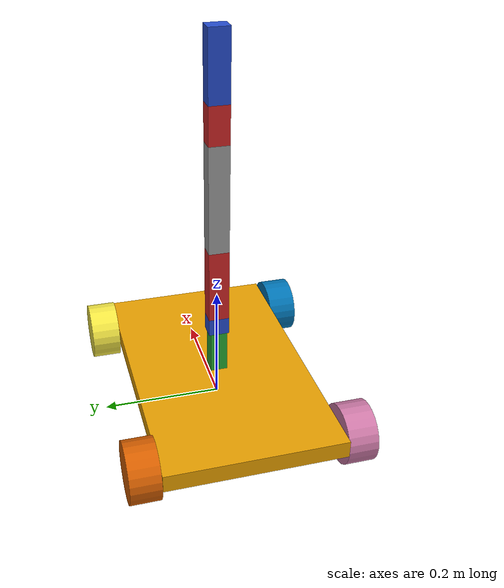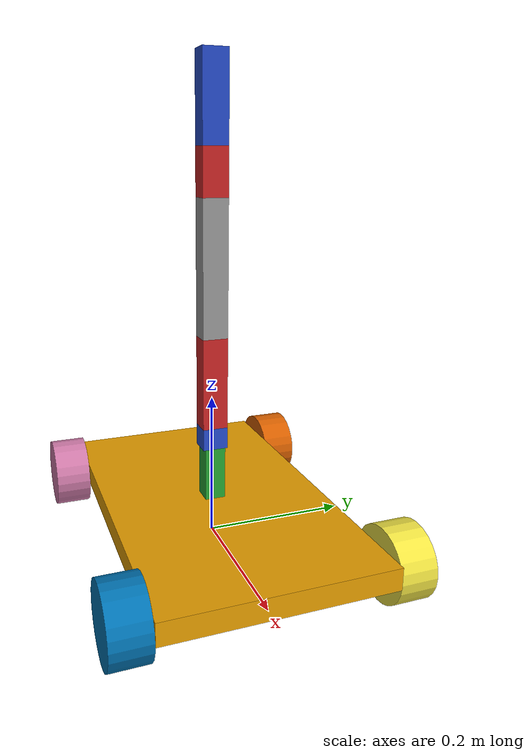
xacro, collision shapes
<?xml version="1.0"?>
<robot xmlns:xacro="http://ros.org/wiki/xacro" name="greenguardian">
  <!-- paramters to be set from the launch file -->
  <xacro:arg name="prefix" default="" />
  <xacro:arg name="use_robot_base" default="true" />
  <xacro:arg name="sim_gazebo_classic" default="false" />
  <xacro:arg name="simulation_controllers" default="" />

  <!--Manipulator Args -->
  <xacro:arg name="lower_limit" default="0.0"/>
  <xacro:arg name="upper_limit" default="${str(pi)}"/>

  <!-- Robot Base -->
  <xacro:if value="$(arg use_robot_base)">
    <xacro:include filename="$(find guardian_description)/urdf/core/robot_base.xacro"/>
    <xacro:include filename="$(find guardian_description)/ros2_control/base.ros2_control.xacro"/>
    <xacro:guardian_base prefix="$(arg prefix)"/>
    <xacro:guardian_base_ros2_control
      prefix="$(arg prefix)"
      sim_gazebo_classic="$(arg sim_gazebo_classic)"/>
  </xacro:if>

  <!-- Load Manipulator -->
  <xacro:include filename="$(find guardian_description)/urdf/core/manipulator_macros.xacro"/>
  <!-- create link fixed to the "world" -->
  <xacro:unless value="$(arg use_robot_base)">
    <link name="world"/>
  </xacro:unless>
  <xacro:manipulator_description
    fix_link_to_robot_base="$(arg use_robot_base)"
    lower_joint_limit="$(arg lower_limit)"
    upper_joint_limit="$(arg upper_limit)"/>
  <!-- Manipulator ros2_control -->
  <xacro:include filename="$(find guardian_description)/ros2_control/manipulator.ros2_control.xacro"/>
  <xacro:guardian_manipulator_ros2_control
    lower_joint_limit="$(arg lower_limit)"
    upper_joint_limit="$(arg upper_limit)"
    sim_gazebo_classic="$(arg sim_gazebo_classic)"/>

  <!-- Gazebo Classic -->
  <xacro:if value="$(arg sim_gazebo_classic)">
    <xacro:include filename="$(find guardian_simulation)/urdf/gazebo.urdf.xacro"/>
      <gazebo>
        <plugin filename="libgazebo_ros2_control.so" name="gazebo_ros2_control">
          <parameters>$(arg simulation_controllers)</parameters>
          <ros>
            <remapping>/base_controller/cmd_vel_unstamped:=/cmd_vel</remapping>
          </ros>
        </plugin>
      </gazebo>
  </xacro:if>

</robot>

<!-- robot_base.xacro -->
<robot xmlns:xacro="http://ros.org/wiki/xacro">
  <!-- Args -->
  <xacro:arg name="robot_namespace" default="/" />

  <!-- Constants -->
  <xacro:property name="M_PI" value="3.14159"/>

  <!-- Included URDF/XACRO Files -->
  <xacro:include filename="$(find guardian_description)/urdf/core/wheel.xacro" />

  <xacro:macro name="guardian_base" params="prefix">

    <!-- Base Size -->
    <xacro:property name="base_x_size" value="0.500" />
    <xacro:property name="base_y_size" value="0.300" />
    <xacro:property name="base_z_size" value="0.100" />

    <!-- Wheel Mounting Positions -->
    <xacro:property name="wheelbase" value="0.400" />             <!-- the distance between the front and rear axles -->
    <xacro:property name="track" value="0.350" />                 <!-- the distance between the left and right wheels -->
    <xacro:property name="wheel_vertical_offset" value="0.03" />

    <!-- Wheel Properties -->
    <xacro:property name="wheel_length" value="0.05" />
    <xacro:property name="wheel_radius" value="0.05" />

    <!-- Base link is the center of the robot's bottom plate -->
    <link name="${prefix}base_link">
      <visual>
        <origin xyz="0 0 ${base_z_size*2/4-0.01}" rpy="0 0 0" />
        <geometry>
          <box size="${base_x_size} ${base_y_size} ${base_z_size/2-0.02}"/>
        </geometry>
      </visual>
      <collision>
        <origin xyz="0 0 ${base_z_size*2/4-0.01}" rpy="0 0 0" />
        <geometry>
          <box size="${base_x_size} ${base_y_size} ${base_z_size/2-0.02}"/>
        </geometry>
      </collision>
    </link>

    <!-- Base footprint is on the ground under the robot -->
    <link name="${prefix}base_footprint"/>

    <joint name="${prefix}base_footprint_joint" type="fixed">
      <origin xyz="0 0 ${wheel_vertical_offset - wheel_radius}" rpy="0 0 0" />
      <parent link="${prefix}base_link" />
      <child link="${prefix}base_footprint" />
    </joint>

    <!-- Inertial link stores the robot's inertial information -->
    <link name="${prefix}inertial_link">
      <inertial>
        <mass value="46.034" />
        <origin xyz="-0.00065 -0.085 0.062" />
        <inertia ixx="0.6022" ixy="-0.02364" ixz="-0.1197" iyy="1.7386" iyz="-0.001544" izz="2.0296" />
      </inertial>
    </link>

    <joint name="${prefix}inertial_joint" type="fixed">
      <origin xyz="0 0 0" rpy="0 0 0" />
      <parent link="${prefix}base_link" />
      <child link="${prefix}inertial_link" />
    </joint>

    <!-- Robot wheel macros -->
    <xacro:guardian_wheel wheel_prefix="${prefix}front_left">
      <origin xyz="${wheelbase/2} ${track/2} ${wheel_vertical_offset}" rpy="0 0 0" />
    </xacro:guardian_wheel>
    <xacro:guardian_wheel wheel_prefix="${prefix}front_right">
      <origin xyz="${wheelbase/2} ${-track/2} ${wheel_vertical_offset}" rpy="0 0 0" />
    </xacro:guardian_wheel>
    <xacro:guardian_wheel wheel_prefix="${prefix}rear_left">
      <origin xyz="${-wheelbase/2} ${track/2} ${wheel_vertical_offset}" rpy="0 0 0" />
    </xacro:guardian_wheel>
    <xacro:guardian_wheel wheel_prefix="${prefix}rear_right">
      <origin xyz="${-wheelbase/2} ${-track/2} ${wheel_vertical_offset}" rpy="0 0 0" />
    </xacro:guardian_wheel>

  </xacro:macro>

</robot>

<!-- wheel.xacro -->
<robot xmlns:xacro="http://ros.org/wiki/xacro">
  <xacro:macro name="guardian_wheel" params="wheel_prefix *joint_pose">
    <link name="${wheel_prefix}_wheel">
      <inertial>
        <mass value="2.637" />
        <origin xyz="0 0 0" />
        <inertia  ixx="0.02467" ixy="0" ixz="0" iyy="0.04411" iyz="0" izz="0.02467" />
      </inertial>
      <visual>
        <origin xyz="0 0 0" rpy="0 0 0" />
        <geometry>
          <mesh filename="package://guardian_description/meshes/wheel.dae" scale="0.3 0.3 0.3"/>
        </geometry>
      </visual>
      <collision>
        <origin xyz="0 0 0" rpy="${M_PI/2} 0 0" />
        <geometry>
          <cylinder length="${wheel_length}" radius="${wheel_radius}" />
        </geometry>
      </collision>
    </link>

    <gazebo reference="${wheel_prefix}_wheel">
      <mu1 value="1.0"/>
      <mu2 value="0.5"/>
      <kp value="10000000.0" />
      <kd value="1.0" />
      <fdir1 value="1 0 0"/>
    </gazebo>

    <joint name="${wheel_prefix}_wheel_joint" type="continuous">
      <parent link="base_link"/>
      <child link="${wheel_prefix}_wheel"/>
      <xacro:insert_block name="joint_pose"/>
      <axis xyz="0 1 0" rpy="0 0 0" />
    </joint>

  </xacro:macro>
</robot>

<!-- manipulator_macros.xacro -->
<robot xmlns:xacro="http://www.ros.org/wiki/xacro">

  <xacro:macro name="manipulator_description" params="
               lower_joint_limit:=^|${-pi/2}
               upper_joint_limit:=^|${pi/2}
               fix_link_to_robot_base:=^|false"
  >

  <!-- helper macro -->
  <xacro:include filename="$(find guardian_description)/urdf/core/create_link.xacro"/>

  <!-- Links -->
  <xacro:property name="link0_len" value="0.0793" />
  <xacro:property name="link1_len" value="0.03" />
  <xacro:property name="link2_len" value="0.127" />
  <xacro:property name="link3_len" value="0.18415" />
  <xacro:property name="link4_len" value="0.0635" />
  <xacro:property name="link5_len" value="0.1143" />

  <xacro:create_link
    link_name="manipulator_base_link"
    color="green"
    xyz_offset="0 0 ${link0_len/2}"
    rpy_offset="0 0 0"
    z="${link0_len}"
    x="0.0285"
    y="0.0285"
  />

  <xacro:create_link
    link_name="link_1"
    color="blue"
    xyz_offset="0 0 ${link1_len/2}"
    rpy_offset="0 0 0"
    z="${link1_len}"
    x="0.0285"
    y="0.035"
  />

  <xacro:create_link
    link_name="link_2"
    color="red"
    xyz_offset="0 0 ${link2_len/2}"
    rpy_offset="0 0 0"
    z="${link2_len}"
    x="0.0285"
    y="0.035"
  />

  <xacro:create_link
    link_name="link_3"
    color="grey"
    xyz_offset="0 0 ${link3_len/2}"
    rpy_offset="0 0 0"
    z="${link3_len}"
    x="0.0285"
    y="0.035"
  />

  <xacro:create_link
    link_name="link_4"
    color="red"
    xyz_offset="0 0 ${link4_len/2}"
    rpy_offset="0 0 0"
    z="${link4_len}"
    x="0.0285"
    y="0.035"
  />

  <xacro:create_link
    link_name="link_5"
    color="blue"
    xyz_offset="0 0 ${link5_len/2}"
    rpy_offset="0 0 0"
    z="${link5_len}"
    x="0.0285"
    y="0.035"
  />

  <!-- Joints -->
  <joint name="base_joint" type="fixed">
    <xacro:if value="${fix_link_to_robot_base}">
      <parent link="base_link"/>
      <origin xyz="0 0 0.05" rpy="0 0 0"/>
    </xacro:if>
    <xacro:unless value="${fix_link_to_robot_base}">
      <parent link="world"/>
      <origin xyz="0 0 0" rpy="0 0 0"/>
    </xacro:unless>
    <child link="manipulator_base_link"/>
    <axis xyz="0 0 1"/>
  </joint>

  <joint name="joint_1" type="revolute">
    <parent link="manipulator_base_link"/>
    <child link="link_1"/>
    <origin xyz="0 0 ${link0_len}" rpy="0 0 0"/>
    <axis xyz="0 0 1"/>
    <limit effort="1000.0" lower="${lower_joint_limit}" upper="${upper_joint_limit}" velocity="2.5"/>
  </joint>

  <joint name="joint_2" type="revolute">
    <parent link="link_1"/>
    <child link="link_2"/>
    <origin xyz="0 0 ${link1_len}" rpy="0 0 0"/>
    <axis xyz="0 -1 0"/>
    <limit effort="1000.0" lower="${lower_joint_limit}" upper="${upper_joint_limit}" velocity="2.5"/>
  </joint>

  <joint name="joint_3" type="revolute">
    <parent link="link_2"/>
    <child link="link_3"/>
    <origin xyz="0 0 ${link2_len}" rpy="0 0 0"/>
    <axis xyz="0 1 0"/>
    <limit effort="1000.0" lower="${lower_joint_limit}" upper="${upper_joint_limit}" velocity="2.5"/>
  </joint>

  <joint name="joint_4" type="revolute">
    <parent link="link_3"/>
    <child link="link_4"/>
    <origin xyz="0 0 ${link3_len}" rpy="0 0 0"/>
    <axis xyz="0 1 0"/>
    <limit effort="1000.0" lower="${lower_joint_limit}" upper="${upper_joint_limit}" velocity="2.5"/>
  </joint>

  <joint name="joint_5" type="revolute">
    <parent link="link_4"/>
    <child link="link_5"/>
    <origin xyz="0 0 ${link4_len}" rpy="0 0 0"/>
    <axis xyz="0 0 1"/>
    <limit effort="1000.0" lower="${lower_joint_limit}" upper="${upper_joint_limit}" velocity="2.5"/>
  </joint>

</xacro:macro>

</robot>

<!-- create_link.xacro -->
<robot xmlns:xacro="http://wiki.ros.org/xacro">

  <!-- ============= Materials & Intertias =============  -->
  <xacro:include filename="$(find guardian_description)/urdf/utils/inertial_macros.xacro"/>
  <xacro:include filename="$(find guardian_description)/urdf/utils/materials_macros.xacro"/>

  <xacro:macro name="create_link" params="
        link_name
        color
        xyz_offset
        rpy_offset
        x y z">
    <link name="${link_name}">
      <visual>
        <origin xyz="${xyz_offset}" rpy="${rpy_offset}"/>
        <geometry>
          <box size="${x} ${y} ${z}"/>
        </geometry>
        <material name="${color}"/>
      </visual>
      <collision>
        <origin xyz="${xyz_offset}" rpy="${rpy_offset}"/>
        <geometry>
          <box size="${x} ${y} ${z}"/>
        </geometry>
      </collision>
      <xacro:inertial_box mass="1.0" x="${x}" y="${y}" z="${z}">
        <origin xyz="${xyz_offset}" rpy="${rpy_offset}"/>
      </xacro:inertial_box>
    </link>
  </xacro:macro>
</robot>

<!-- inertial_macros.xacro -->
<robot xmlns:xacro="http://www.ros.org/wiki/xacro" >

    <!-- Specify some standard inertial calculations https://en.wikipedia.org/wiki/List_of_moments_of_inertia -->
    <!-- These make use of xacro's mathematical functionality -->
    <xacro:macro name="inertial_sphere" params="mass radius *origin">
        <inertial>
            <xacro:insert_block name="origin"/>
            <mass value="${mass}" />
            <inertia ixx="${(2/5) * mass * (radius*radius)}" ixy="0.0" ixz="0.0"
                    iyy="${(2/5) * mass * (radius*radius)}" iyz="0.0"
                    izz="${(2/5) * mass * (radius*radius)}" />
        </inertial>
    </xacro:macro>

    <xacro:macro name="inertial_box" params="mass x y z *origin">
        <inertial>
            <xacro:insert_block name="origin"/>
            <mass value="${mass}" />
            <inertia ixx="${(1/12) * mass * (y*y+z*z)}" ixy="0.0" ixz="0.0"
                    iyy="${(1/12) * mass * (x*x+z*z)}" iyz="0.0"
                    izz="${(1/12) * mass * (x*x+y*y)}" />
        </inertial>
    </xacro:macro>

    <xacro:macro name="inertial_cylinder" params="mass length radius *origin">
        <inertial>
            <xacro:insert_block name="origin"/>
            <mass value="${mass}" />
            <inertia ixx="${(1/12) * mass * (3*radius*radius + length*length)}" ixy="0.0" ixz="0.0"
                    iyy="${(1/12) * mass * (3*radius*radius + length*length)}" iyz="0.0"
                    izz="${(1/2) * mass * (radius*radius)}" />
        </inertial>
    </xacro:macro>

</robot>
